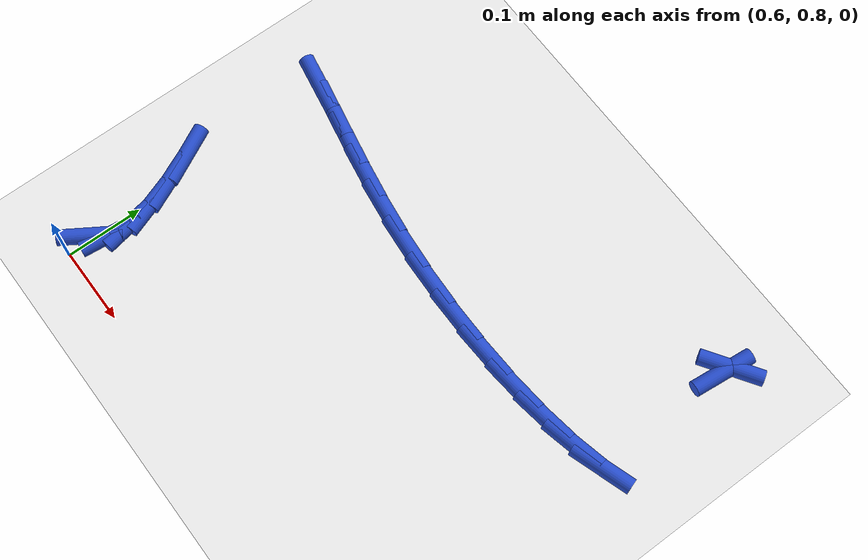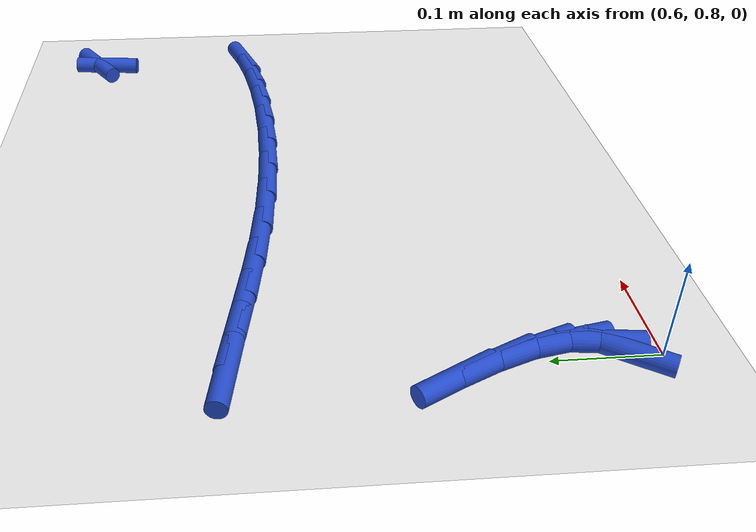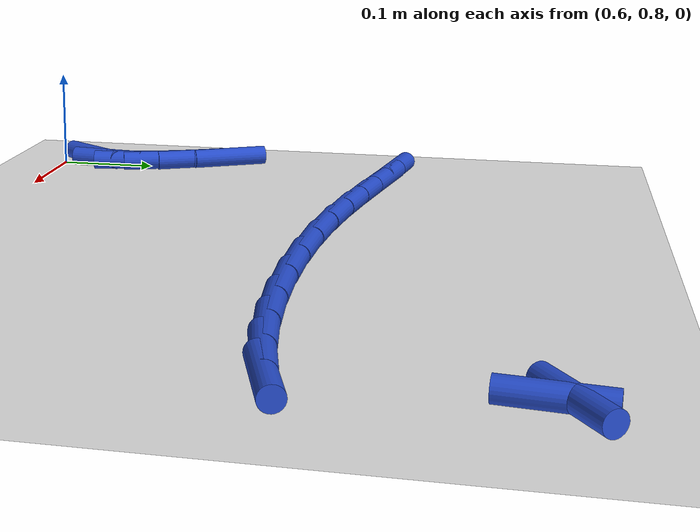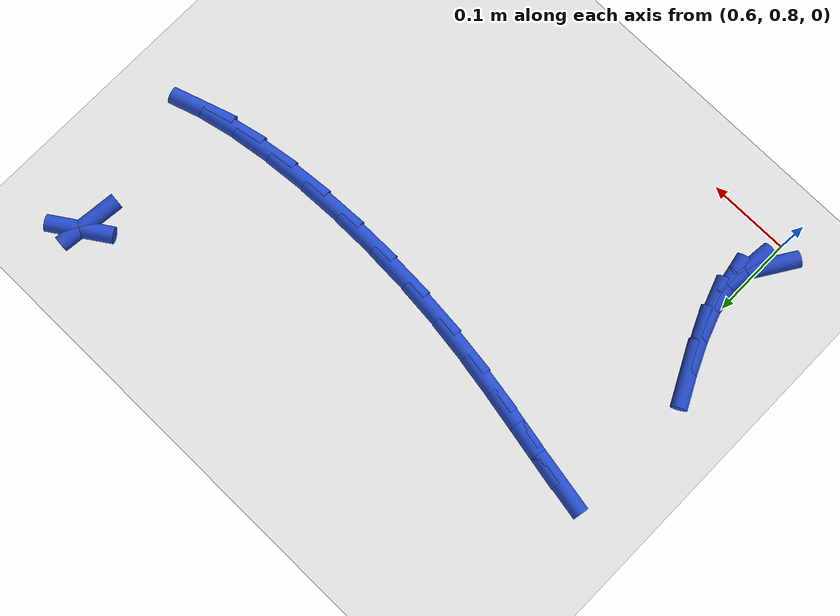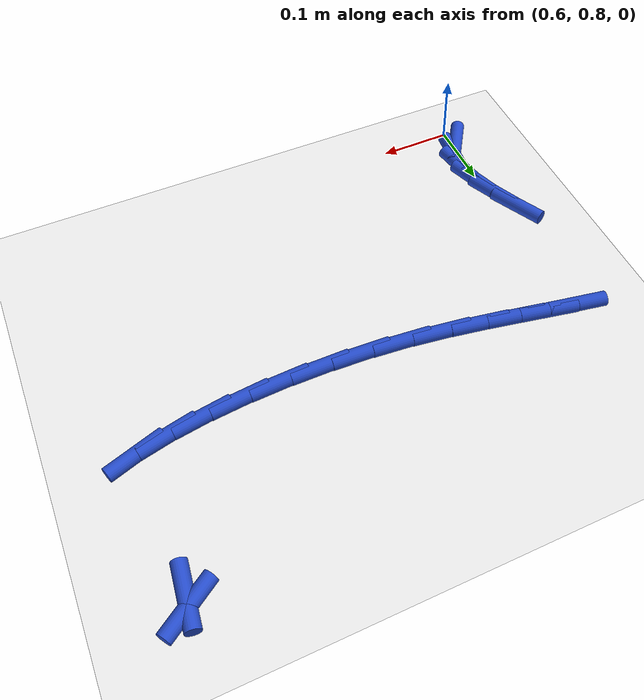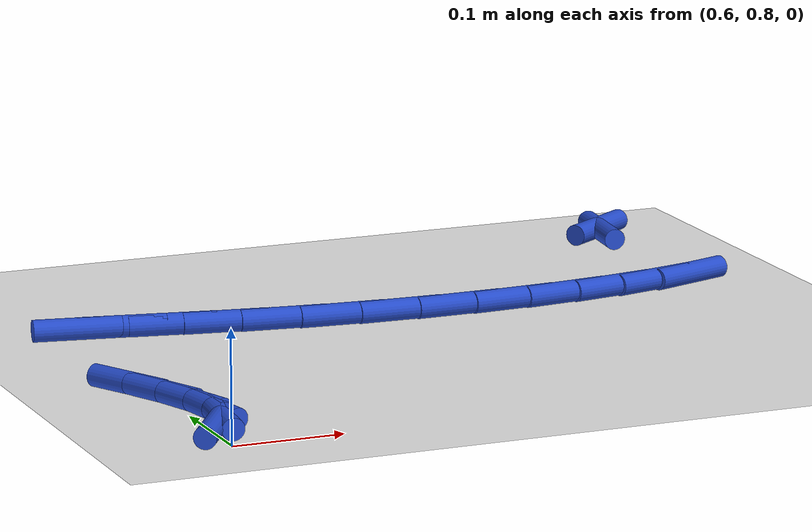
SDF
<sdf version="1.6">
 <world name="default">
  <model name="ground_plane">
   <static>1</static>
   <link name="link">
    <collision name="collision">
     <geometry><plane><normal>0 0 1</normal><size>100 100</size></plane></geometry>
     <surface><friction><ode><mu>100</mu><mu2>50</mu2></ode></friction></surface>
    </collision>
    <visual name="visual">
     <cast_shadows>0</cast_shadows>
     <geometry><plane><normal>0 0 1</normal><size>100 100</size></plane></geometry>
     <material>
      <script><uri>file://media/materials/scripts/gazebo.material</uri><name>Gazebo/WhiteGlow</name></script>
     </material>
    </visual>
   </link>
  </model>
  <model name="line">
   <link name="link_32">
    <pose>0.5976436946369822 0.8330434718592097 0.01 0 1.57 1.003997543385579</pose>
    <collision name="collision">
     <geometry><cylinder><radius>0.01</radius><length>0.08</length></cylinder></geometry>
    </collision>
    <visual name="visual">
     <material>
      <script><name>Gazebo/Blue</name><uri>file://media/materials/scripts/gazebo.material</uri></script>
     </material>
     <geometry><cylinder><radius>0.01</radius><length>0.08</length></cylinder></geometry>
    </visual>
   </link>
   <link name="link_33">
    <pose>0.6109046732203666 0.8538789522892043 0.01 0 1.57 1.4696583424926406</pose>
    <collision name="collision">
     <geometry><cylinder><radius>0.01</radius><length>0.08</length></cylinder></geometry>
    </collision>
    <visual name="visual">
     <material>
      <script><name>Gazebo/Blue</name><uri>file://media/materials/scripts/gazebo.material</uri></script>
     </material>
     <geometry><cylinder><radius>0.01</radius><length>0.08</length></cylinder></geometry>
    </visual>
   </link>
   <link name="link_34">
    <pose>0.6136377213600606 0.880809715374927 0.01 0 1.57 -1.3801142799555939</pose>
    <collision name="collision">
     <geometry><cylinder><radius>0.01</radius><length>0.08</length></cylinder></geometry>
    </collision>
    <visual name="visual">
     <material>
      <script><name>Gazebo/Blue</name><uri>file://media/materials/scripts/gazebo.material</uri></script>
     </material>
     <geometry><cylinder><radius>0.01</radius><length>0.08</length></cylinder></geometry>
    </visual>
   </link>
   <link name="link_35">
    <pose>0.6074789489720074 0.912715955827897 0.01 0 1.57 -1.2227136579035274</pose>
    <collision name="collision">
     <geometry><cylinder><radius>0.01</radius><length>0.08</length></cylinder></geometry>
    </collision>
    <visual name="visual">
     <material>
      <script><name>Gazebo/Blue</name><uri>file://media/materials/scripts/gazebo.material</uri></script>
     </material>
     <geometry><cylinder><radius>0.01</radius><length>0.08</length></cylinder></geometry>
    </visual>
   </link>
   <link name="link_36">
    <pose>0.5946467747874622 0.9480802093952023 0.01 0 1.57 -1.1368525372482288</pose>
    <collision name="collision">
     <geometry><cylinder><radius>0.01</radius><length>0.08</length></cylinder></geometry>
    </collision>
    <visual name="visual">
     <material>
      <script><name>Gazebo/Blue</name><uri>file://media/materials/scripts/gazebo.material</uri></script>
     </material>
     <geometry><cylinder><radius>0.01</radius><length>0.08</length></cylinder></geometry>
    </visual>
   </link>
   <link name="link_37">
    <pose>0.5773596175376807 0.9853850118239318 0.01 0 1.57 -1.0932565484162966</pose>
    <collision name="collision">
     <geometry><cylinder><radius>0.01</radius><length>0.08</length></cylinder></geometry>
    </collision>
    <visual name="visual">
     <material>
      <script><name>Gazebo/Blue</name><uri>file://media/materials/scripts/gazebo.material</uri></script>
     </material>
     <geometry><cylinder><radius>0.01</radius><length>0.08</length></cylinder></geometry>
    </visual>
   </link>
   <link name="link_47">
    <pose>0.5967063027570535 1.1742576548613701 0.01 0 1.57 -0.1800229171772811</pose>
    <collision name="collision">
     <geometry><cylinder><radius>0.01</radius><length>0.08</length></cylinder></geometry>
    </collision>
    <visual name="visual">
     <material>
      <script><name>Gazebo/Blue</name><uri>file://media/materials/scripts/gazebo.material</uri></script>
     </material>
     <geometry><cylinder><radius>0.01</radius><length>0.08</length></cylinder></geometry>
    </visual>
   </link>
   <link name="link_48">
    <pose>0.6362300707033254 1.1670645976524077 0.01 0 1.57 -0.19613631826651462</pose>
    <collision name="collision">
     <geometry><cylinder><radius>0.01</radius><length>0.08</length></cylinder></geometry>
    </collision>
    <visual name="visual">
     <material>
      <script><name>Gazebo/Blue</name><uri>file://media/materials/scripts/gazebo.material</uri></script>
     </material>
     <geometry><cylinder><radius>0.01</radius><length>0.08</length></cylinder></geometry>
    </visual>
   </link>
   <link name="link_49">
    <pose>0.6805843637388361 1.1582518113315916 0.01 0 1.57 -0.19104581190082603</pose>
    <collision name="collision">
     <geometry><cylinder><radius>0.01</radius><length>0.08</length></cylinder></geometry>
    </collision>
    <visual name="visual">
     <material>
      <script><name>Gazebo/Blue</name><uri>file://media/materials/scripts/gazebo.material</uri></script>
     </material>
     <geometry><cylinder><radius>0.01</radius><length>0.08</length></cylinder></geometry>
    </visual>
   </link>
   <link name="link_50">
    <pose>0.7289055949113081 1.148906265391133 0.01 0 1.57 -0.16931906644913652</pose>
    <collision name="collision">
     <geometry><cylinder><radius>0.01</radius><length>0.08</length></cylinder></geometry>
    </collision>
    <visual name="visual">
     <material>
      <script><name>Gazebo/Blue</name><uri>file://media/materials/scripts/gazebo.material</uri></script>
     </material>
     <geometry><cylinder><radius>0.01</radius><length>0.08</length></cylinder></geometry>
    </visual>
   </link>
   <link name="link_51">
    <pose>0.7803301772684634 1.140114929323241 0.01 0 1.57 -0.13250731604007934</pose>
    <collision name="collision">
     <geometry><cylinder><radius>0.01</radius><length>0.08</length></cylinder></geometry>
    </collision>
    <visual name="visual">
     <material>
      <script><name>Gazebo/Blue</name><uri>file://media/materials/scripts/gazebo.material</uri></script>
     </material>
     <geometry><cylinder><radius>0.01</radius><length>0.08</length></cylinder></geometry>
    </visual>
   </link>
   <link name="link_52">
    <pose>0.833994074479671 1.1329621580142335 0.01 0 1.57 -0.08667703356944327</pose>
    <collision name="collision">
     <geometry><cylinder><radius>0.01</radius><length>0.08</length></cylinder></geometry>
    </collision>
    <visual name="visual">
     <material>
      <script><name>Gazebo/Blue</name><uri>file://media/materials/scripts/gazebo.material</uri></script>
     </material>
     <geometry><cylinder><radius>0.01</radius><length>0.08</length></cylinder></geometry>
    </visual>
   </link>
   <link name="link_53">
    <pose>0.8889735120391729 1.128184733345039 0.01 0 1.57 -0.042647658393842006</pose>
    <collision name="collision">
     <geometry><cylinder><radius>0.01</radius><length>0.08</length></cylinder></geometry>
    </collision>
    <visual name="visual">
     <material>
      <script><name>Gazebo/Blue</name><uri>file://media/materials/scripts/gazebo.material</uri></script>
     </material>
     <geometry><cylinder><radius>0.01</radius><length>0.08</length></cylinder></geometry>
    </visual>
   </link>
   <link name="link_54">
    <pose>0.9442256922156741 1.1258269275890662 0.01 0 1.57 0.0004411157891163632</pose>
    <collision name="collision">
     <geometry><cylinder><radius>0.01</radius><length>0.08</length></cylinder></geometry>
    </collision>
    <visual name="visual">
     <material>
      <script><name>Gazebo/Blue</name><uri>file://media/materials/scripts/gazebo.material</uri></script>
     </material>
     <geometry><cylinder><radius>0.01</radius><length>0.08</length></cylinder></geometry>
    </visual>
   </link>
   <link name="link_55">
    <pose>0.9986937136553328 1.1258509542948836 0.01 0 1.57 0.044966996668675846</pose>
    <collision name="collision">
     <geometry><cylinder><radius>0.01</radius><length>0.08</length></cylinder></geometry>
    </collision>
    <visual name="visual">
     <material>
      <script><name>Gazebo/Blue</name><uri>file://media/materials/scripts/gazebo.material</uri></script>
     </material>
     <geometry><cylinder><radius>0.01</radius><length>0.08</length></cylinder></geometry>
    </visual>
   </link>
   <link name="link_56">
    <pose>1.051320675004307 1.1282190270110597 0.01 0 1.57 0.09372073595957132</pose>
    <collision name="collision">
     <geometry><cylinder><radius>0.01</radius><length>0.08</length></cylinder></geometry>
    </collision>
    <visual name="visual">
     <material>
      <script><name>Gazebo/Blue</name><uri>file://media/materials/scripts/gazebo.material</uri></script>
     </material>
     <geometry><cylinder><radius>0.01</radius><length>0.08</length></cylinder></geometry>
    </visual>
   </link>
   <link name="link_57">
    <pose>1.1010496749087553 1.132893359286163 0.01 0 1.57 0.15052796607002553</pose>
    <collision name="collision">
     <geometry><cylinder><radius>0.01</radius><length>0.08</length></cylinder></geometry>
    </collision>
    <visual name="visual">
     <material>
      <script><name>Gazebo/Blue</name><uri>file://media/materials/scripts/gazebo.material</uri></script>
     </material>
     <geometry><cylinder><radius>0.01</radius><length>0.08</length></cylinder></geometry>
    </visual>
   </link>
   <link name="link_58">
    <pose>1.1468238120148364 1.1398361646687618 0.01 0 1.57 0.22136016469763864</pose>
    <collision name="collision">
     <geometry><cylinder><radius>0.01</radius><length>0.08</length></cylinder></geometry>
    </collision>
    <visual name="visual">
     <material>
      <script><name>Gazebo/Blue</name><uri>file://media/materials/scripts/gazebo.material</uri></script>
     </material>
     <geometry><cylinder><radius>0.01</radius><length>0.08</length></cylinder></geometry>
    </visual>
   </link>
   <link name="link_59">
    <pose>1.1875861849687084 1.149009656707424 0.01 0 1.57 0.31660080765306786</pose>
    <collision name="collision">
     <geometry><cylinder><radius>0.01</radius><length>0.08</length></cylinder></geometry>
    </collision>
    <visual name="visual">
     <material>
      <script><name>Gazebo/Blue</name><uri>file://media/materials/scripts/gazebo.material</uri></script>
     </material>
     <geometry><cylinder><radius>0.01</radius><length>0.08</length></cylinder></geometry>
    </visual>
   </link>
   <link name="link_69">
    <pose>1.1841703237047616 1.3331370815878667 0.01 0 1.57 1.4637179778415383</pose>
    <collision name="collision">
     <geometry><cylinder><radius>0.01</radius><length>0.08</length></cylinder></geometry>
    </collision>
    <visual name="visual">
     <material>
      <script><name>Gazebo/Blue</name><uri>file://media/materials/scripts/gazebo.material</uri></script>
     </material>
     <geometry><cylinder><radius>0.01</radius><length>0.08</length></cylinder></geometry>
    </visual>
   </link>
   <link name="link_70">
    <pose>1.1854679362446843 1.345209077287086 0.01 0 1.57 0.5863482554093195</pose>
    <collision name="collision">
     <geometry><cylinder><radius>0.01</radius><length>0.08</length></cylinder></geometry>
    </collision>
    <visual name="visual">
     <material>
      <script><name>Gazebo/Blue</name><uri>file://media/materials/scripts/gazebo.material</uri></script>
     </material>
     <geometry><cylinder><radius>0.01</radius><length>0.08</length></cylinder></geometry>
    </visual>
   </link>
  </model>
 </world>
</sdf>
